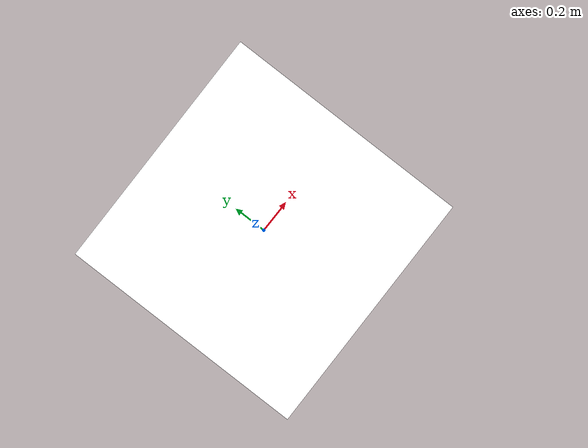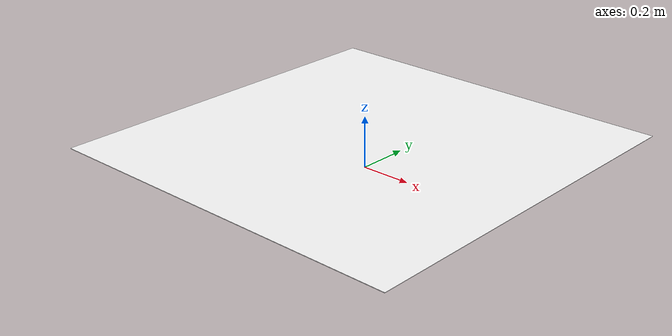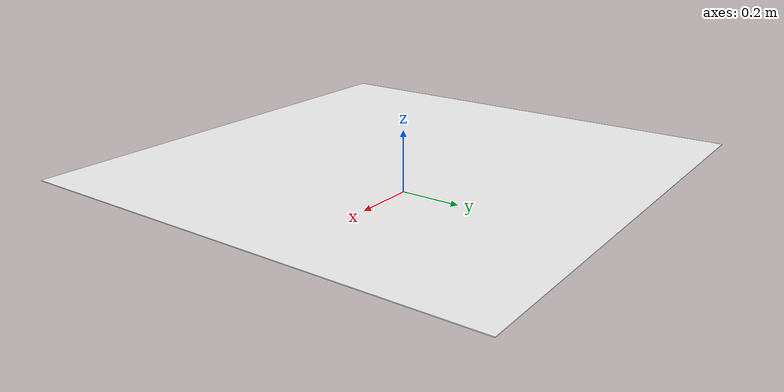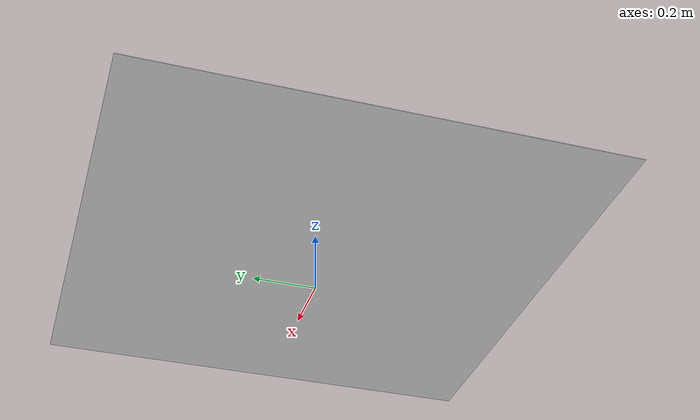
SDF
<?xml version="1.0" ?>
<sdf version="1.9">
  <model name="land_pad">
    <pose>0.0 0.0 0.1 0 0 0</pose>
    <link name="link">
        <inertial>
        <pose>0 0 0 0 0 0</pose>
        <mass>10.0</mass>
        <inertia>
          <ixx>0.01</ixx>
          <ixy>0</ixy>
          <ixz>0</ixz>
          <iyy>0.01</iyy>
          <iyz>0</iyz>
          <izz>0.01</izz>
        </inertia>
      </inertial>
      <kinematic>true</kinematic>
      <collision name="collision">
        <geometry>
          <box>
            <size>1.5 1.5 0.001</size>
          </box>
        </geometry>
        <surface>
          <friction>
            <ode>
              <mu>1.0</mu>
              <mu2>1.0</mu2>
              <fdir1>1 0 0</fdir1>
            </ode>
          </friction>
          <contact>
            <ode>
              <kp>1e+12</kp>
              <kd>1</kd>
              <max_vel>10</max_vel>
              <min_depth>0.003</min_depth>
            </ode>
          </contact>
        </surface>
      </collision>
      <visual name="visual">
        <geometry>
          <box>
            <size>1.5 1.5 0.002</size>
          </box>
        </geometry>
        <!-- Aruco marker as the land pad structure -->
        <material>
          <pbr>
              <metal>
                  <albedo_map>model://land_pad/materials/textures/e-aruco1.png</albedo_map>
              </metal>
                  </pbr>
          <script>
              <uri>model://land_pad/materials/scripts</uri>
              <uri>model://land_pad/materials/textures</uri>
              <name>ArucoVisualMarker0/Marker</name>
          </script>
          <ambient>1 1 1 1</ambient>
          <diffuse>1 1 1 1</diffuse>
          <specular>1 1 1 1</specular>
        </material>
      </visual>
    </link>
  </model>
</sdf>
